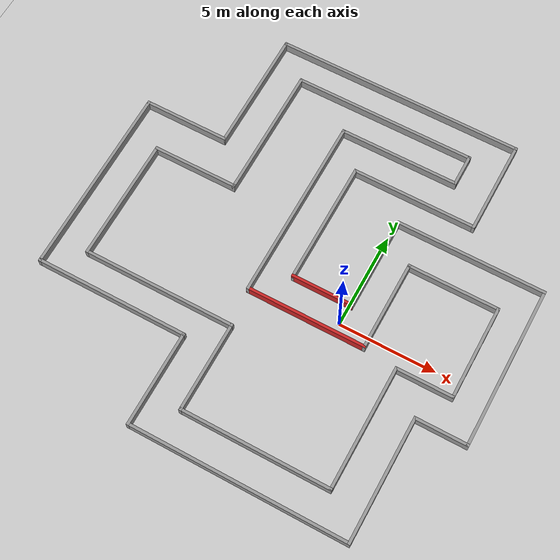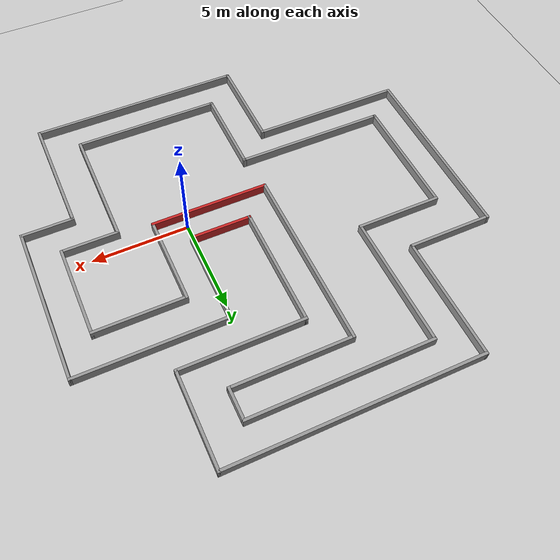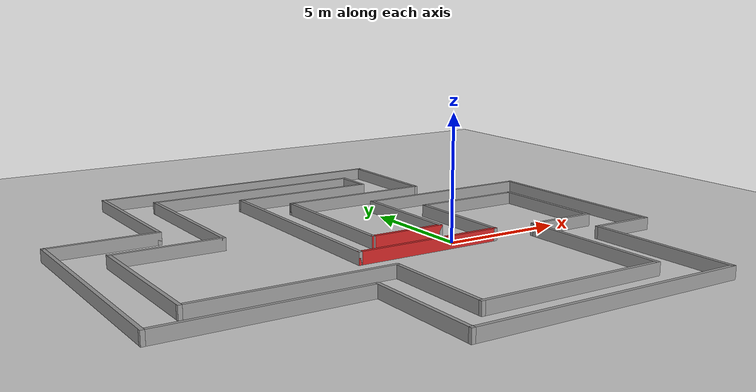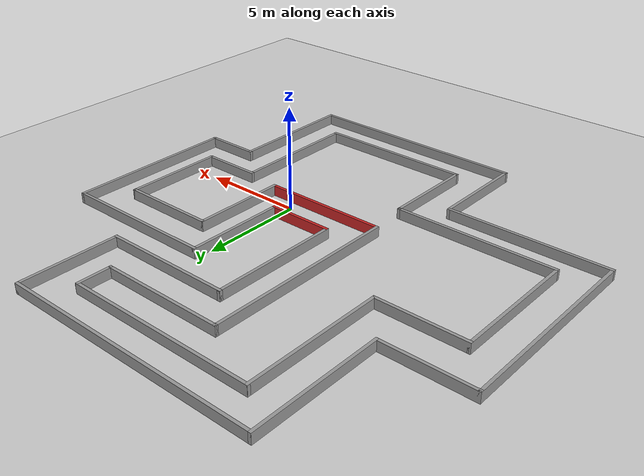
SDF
<sdf version="1.6">
 <world name="default">
  <light name="sun" type="directional">
   <pose>0 0 10 0 -0 0</pose>
   <diffuse>0.8 0.8 0.8 1</diffuse>
   <specular>0.2 0.2 0.2 1</specular>
   <attenuation>
    <range>1000</range>
    <constant>0.9</constant>
    <linear>0.01</linear>
    <quadratic>0.001</quadratic>
   </attenuation>
   <direction>-0.5 0.1 -0.9</direction>
  </light>
  <model name="ground_plane">
   <static>1</static>
   <link name="link">
    <collision name="collision">
     <geometry><plane><normal>0 0 1</normal><size>100 100</size></plane></geometry>
     <surface><friction><ode><mu>100</mu><mu2>50</mu2></ode></friction></surface>
    </collision>
    <visual name="visual">
     <cast_shadows>0</cast_shadows>
     <geometry><plane><normal>0 0 1</normal><size>100 100</size></plane></geometry>
     <material>
      <script><uri>file://media/materials/scripts/gazebo.material</uri><name>Gazebo/Grey</name></script>
     </material>
    </visual>
   </link>
  </model>
  <gravity>0 0 -9.8</gravity>
  <magnetic_field>6e-06 2.3e-05 -4.2e-05</magnetic_field>
  <atmosphere type="adiabatic"/>
  <physics name="default_physics" default="0" type="ode">
   <max_step_size>0.001</max_step_size>
   <real_time_factor>1</real_time_factor>
   <real_time_update_rate>1000</real_time_update_rate>
  </physics>
  <scene><ambient>0.4 0.4 0.4 1</ambient><background>0.7 0.7 0.7 1</background><shadows>1</shadows></scene>
  <audio><device>default</device></audio>
  <spherical_coordinates>
   <surface_model>EARTH_WGS84</surface_model>
   <latitude_deg>0</latitude_deg>
   <longitude_deg>0</longitude_deg>
   <elevation>0</elevation>
   <heading_deg>0</heading_deg>
  </spherical_coordinates>
  <model name="Racetrack">
   <pose>-3.03975 1.63938 0 0 -0 0</pose>
   <link name="Wall_0">
    <collision name="Wall_0_Collision">
     <geometry><box><size>9.75 0.15 0.5</size></box></geometry>
     <pose>0 0 0.25 0 -0 0</pose>
    </collision>
    <visual name="Wall_0_Visual">
     <pose>0 0 0.25 0 -0 0</pose>
     <geometry><box><size>9.75 0.15 0.5</size></box></geometry>
     <material>
      <script><uri>file://media/materials/scripts/gazebo.material</uri><name>Gazebo/Grey</name></script>
      <ambient>1 1 1 1</ambient>
     </material>
     <meta><layer>0</layer></meta>
    </visual>
    <pose>-1.46766 2.57599 0 0 -0 -1.5708</pose>
   </link>
   <link name="Wall_1">
    <collision name="Wall_1_Collision">
     <geometry><box><size>6.25 0.15 0.5</size></box></geometry>
     <pose>0 0 0.25 0 -0 0</pose>
    </collision>
    <visual name="Wall_1_Visual">
     <pose>0 0 0.25 0 -0 0</pose>
     <geometry><box><size>6.25 0.15 0.5</size></box></geometry>
     <material>
      <script><uri>file://media/materials/scripts/gazebo.material</uri><name>Gazebo/Red</name></script>
      <ambient>1 1 1 1</ambient>
     </material>
     <meta><layer>0</layer></meta>
    </visual>
    <pose>1.58234 -2.22401 0 0 -0 0</pose>
   </link>
   <link name="Wall_10">
    <collision name="Wall_10_Collision">
     <geometry><box><size>6.5 0.15 0.5</size></box></geometry>
     <pose>0 0 0.25 0 -0 0</pose>
    </collision>
    <visual name="Wall_10_Visual">
     <pose>0 0 0.25 0 -0 0</pose>
     <geometry><box><size>6.5 0.15 0.5</size></box></geometry>
     <material>
      <script><uri>file://media/materials/scripts/gazebo.material</uri><name>Gazebo/Grey</name></script>
      <ambient>1 1 1 1</ambient>
     </material>
     <meta><layer>0</layer></meta>
    </visual>
    <pose>-9.06766 -1.04901 0 0 -0 1.5708</pose>
   </link>
   <link name="Wall_11">
    <collision name="Wall_11_Collision">
     <geometry><box><size>4.5 0.15 0.5</size></box></geometry>
     <pose>0 0 0.25 0 -0 0</pose>
    </collision>
    <visual name="Wall_11_Visual">
     <pose>0 0 0.25 0 -0 0</pose>
     <geometry><box><size>4.5 0.15 0.5</size></box></geometry>
     <material>
      <script><uri>file://media/materials/scripts/gazebo.material</uri><name>Gazebo/Grey</name></script>
      <ambient>1 1 1 1</ambient>
     </material>
     <meta><layer>0</layer></meta>
    </visual>
    <pose>-6.89266 2.12599 0 0 -0 0</pose>
   </link>
   <link name="Wall_12">
    <collision name="Wall_12_Collision">
     <geometry><box><size>7 0.15 0.5</size></box></geometry>
     <pose>0 0 0.25 0 -0 0</pose>
    </collision>
    <visual name="Wall_12_Visual">
     <pose>0 0 0.25 0 -0 0</pose>
     <geometry><box><size>7 0.15 0.5</size></box></geometry>
     <material>
      <script><uri>file://media/materials/scripts/gazebo.material</uri><name>Gazebo/Grey</name></script>
      <ambient>1 1 1 1</ambient>
     </material>
     <meta><layer>0</layer></meta>
    </visual>
    <pose>-4.71766 5.55099 0 0 -0 1.5708</pose>
   </link>
   <link name="Wall_13">
    <collision name="Wall_13_Collision">
     <geometry><box><size>9.5 0.15 0.5</size></box></geometry>
     <pose>0 0 0.25 0 -0 0</pose>
    </collision>
    <visual name="Wall_13_Visual">
     <pose>0 0 0.25 0 -0 0</pose>
     <geometry><box><size>9.5 0.15 0.5</size></box></geometry>
     <material>
      <script><uri>file://media/materials/scripts/gazebo.material</uri><name>Gazebo/Grey</name></script>
      <ambient>1 1 1 1</ambient>
     </material>
     <meta><layer>0</layer></meta>
    </visual>
    <pose>-0.042701 8.97618 0 0 -0 4e-05</pose>
   </link>
   <link name="Wall_14">
    <collision name="Wall_14_Collision">
     <geometry><box><size>1.75037 0.15 0.5</size></box></geometry>
     <pose>0 0 0.25 0 -0 0</pose>
    </collision>
    <visual name="Wall_14_Visual">
     <pose>0 0 0.25 0 -0 0</pose>
     <geometry><box><size>1.75037 0.15 0.5</size></box></geometry>
     <material>
      <script><uri>file://media/materials/scripts/gazebo.material</uri><name>Gazebo/Grey</name></script>
      <ambient>1 1 1 1</ambient>
     </material>
     <meta><layer>0</layer></meta>
    </visual>
    <pose>4.6323 8.17618 0 0 -0 -1.57075</pose>
   </link>
   <link name="Wall_15">
    <collision name="Wall_15_Collision">
     <geometry><box><size>6.25 0.15 0.5</size></box></geometry>
     <pose>0 0 0.25 0 -0 0</pose>
    </collision>
    <visual name="Wall_15_Visual">
     <pose>0 0 0.25 0 -0 0</pose>
     <geometry><box><size>6.25 0.15 0.5</size></box></geometry>
     <material>
      <script><uri>file://media/materials/scripts/gazebo.material</uri><name>Gazebo/Grey</name></script>
      <ambient>1 1 1 1</ambient>
     </material>
     <meta><layer>0</layer></meta>
    </visual>
    <pose>1.58234 7.37599 0 0 -0 3.14159</pose>
   </link>
   <link name="Wall_16">
    <collision name="Wall_16_Collision">
     <geometry><box><size>0.15 0.15 0.5</size></box></geometry>
     <pose>0 0 0.25 0 -0 0</pose>
    </collision>
    <visual name="Wall_16_Visual">
     <pose>0 0 0.25 0 -0 0</pose>
     <geometry><box><size>0.15 0.15 0.5</size></box></geometry>
     <material>
      <script><uri>file://media/materials/scripts/gazebo.material</uri><name>Gazebo/Grey</name></script>
      <ambient>1 1 1 1</ambient>
     </material>
     <meta><layer>0</layer></meta>
    </visual>
    <pose>-1.46766 7.37599 0 0 -0 0</pose>
   </link>
   <link name="Wall_2">
    <collision name="Wall_2_Collision">
     <geometry><box><size>4.75 0.15 0.5</size></box></geometry>
     <pose>0 0 0.25 0 -0 0</pose>
    </collision>
    <visual name="Wall_2_Visual">
     <pose>0 0 0.25 0 -0 0</pose>
     <geometry><box><size>4.75 0.15 0.5</size></box></geometry>
     <material>
      <script><uri>file://media/materials/scripts/gazebo.material</uri><name>Gazebo/Grey</name></script>
      <ambient>1 1 1 1</ambient>
     </material>
     <meta><layer>0</layer></meta>
    </visual>
    <pose>4.63234 0.075989 0 0 -0 1.5708</pose>
   </link>
   <link name="Wall_3">
    <collision name="Wall_3_Collision">
     <geometry><box><size>4.75 0.15 0.5</size></box></geometry>
     <pose>0 0 0.25 0 -0 0</pose>
    </collision>
    <visual name="Wall_3_Visual">
     <pose>0 0 0.25 0 -0 0</pose>
     <geometry><box><size>4.75 0.15 0.5</size></box></geometry>
     <material>
      <script><uri>file://media/materials/scripts/gazebo.material</uri><name>Gazebo/Grey</name></script>
      <ambient>1 1 1 1</ambient>
     </material>
     <meta><layer>0</layer></meta>
    </visual>
    <pose>6.93234 2.37599 0 0 -0 0</pose>
   </link>
   <link name="Wall_4">
    <collision name="Wall_4_Collision">
     <geometry><box><size>5 0.15 0.5</size></box></geometry>
     <pose>0 0 0.25 0 -0 0</pose>
    </collision>
    <visual name="Wall_4_Visual">
     <pose>0 0 0.25 0 -0 0</pose>
     <geometry><box><size>5 0.15 0.5</size></box></geometry>
     <material>
      <script><uri>file://media/materials/scripts/gazebo.material</uri><name>Gazebo/Grey</name></script>
      <ambient>1 1 1 1</ambient>
     </material>
     <meta><layer>0</layer></meta>
    </visual>
    <pose>9.23234 -0.049011 0 0 -0 -1.5708</pose>
   </link>
   <link name="Wall_5">
    <collision name="Wall_5_Collision">
     <geometry><box><size>3 0.15 0.5</size></box></geometry>
     <pose>0 0 0.25 0 -0 0</pose>
    </collision>
    <visual name="Wall_5_Visual">
     <pose>0 0 0.25 0 -0 0</pose>
     <geometry><box><size>3 0.15 0.5</size></box></geometry>
     <material>
      <script><uri>file://media/materials/scripts/gazebo.material</uri><name>Gazebo/Grey</name></script>
      <ambient>1 1 1 1</ambient>
     </material>
     <meta><layer>0</layer></meta>
    </visual>
    <pose>7.80734 -2.47401 0 0 -0 3.14159</pose>
   </link>
   <link name="Wall_6">
    <collision name="Wall_6_Collision">
     <geometry><box><size>6.5 0.15 0.5</size></box></geometry>
     <pose>0 0 0.25 0 -0 0</pose>
    </collision>
    <visual name="Wall_6_Visual">
     <pose>0 0 0.25 0 -0 0</pose>
     <geometry><box><size>6.5 0.15 0.5</size></box></geometry>
     <material>
      <script><uri>file://media/materials/scripts/gazebo.material</uri><name>Gazebo/Grey</name></script>
      <ambient>1 1 1 1</ambient>
     </material>
     <meta><layer>0</layer></meta>
    </visual>
    <pose>6.38234 -5.64901 0 0 -0 -1.5708</pose>
   </link>
   <link name="Wall_69">
    <collision name="Wall_69_Collision">
     <geometry><box><size>6.5 0.15 0.5</size></box></geometry>
     <pose>0 0 0.25 0 -0 0</pose>
    </collision>
    <visual name="Wall_69_Visual">
     <pose>0 0 0.25 0 -0 0</pose>
     <geometry><box><size>6.5 0.15 0.5</size></box></geometry>
     <material>
      <script><uri>file://media/materials/scripts/gazebo.material</uri><name>Gazebo/Grey</name></script>
      <ambient>1 1 1 1</ambient>
     </material>
     <meta><layer>0</layer></meta>
    </visual>
    <pose>0.075 2.5 0 0 -0 -1.5708</pose>
   </link>
   <link name="Wall_7">
    <collision name="Wall_7_Collision">
     <geometry><box><size>7.75 0.15 0.5</size></box></geometry>
     <pose>0 0 0.25 0 -0 0</pose>
    </collision>
    <visual name="Wall_7_Visual">
     <pose>0 0 0.25 0 -0 0</pose>
     <geometry><box><size>7.75 0.15 0.5</size></box></geometry>
     <material>
      <script><uri>file://media/materials/scripts/gazebo.material</uri><name>Gazebo/Grey</name></script>
      <ambient>1 1 1 1</ambient>
     </material>
     <meta><layer>0</layer></meta>
    </visual>
    <pose>2.58234 -8.82401 0 0 -0 3.14159</pose>
   </link>
   <link name="Wall_70">
    <collision name="Wall_70_Collision">
     <geometry><box><size>3.25 0.15 0.5</size></box></geometry>
     <pose>0 0 0.25 0 -0 0</pose>
    </collision>
    <visual name="Wall_70_Visual">
     <pose>0 0 0.25 0 -0 0</pose>
     <geometry><box><size>3.25 0.15 0.5</size></box></geometry>
     <material>
      <script><uri>file://media/materials/scripts/gazebo.material</uri><name>Gazebo/Red</name></script>
      <ambient>1 1 1 1</ambient>
     </material>
     <meta><layer>0</layer></meta>
    </visual>
    <pose>1.625 -0.675 0 0 -0 0</pose>
   </link>
   <link name="Wall_71">
    <collision name="Wall_71_Collision">
     <geometry><box><size>5 0.15 0.5</size></box></geometry>
     <pose>0 0 0.25 0 -0 0</pose>
    </collision>
    <visual name="Wall_71_Visual">
     <pose>0 0 0.25 0 -0 0</pose>
     <geometry><box><size>5 0.15 0.5</size></box></geometry>
     <material>
      <script><uri>file://media/materials/scripts/gazebo.material</uri><name>Gazebo/Grey</name></script>
      <ambient>1 1 1 1</ambient>
     </material>
     <meta><layer>0</layer></meta>
    </visual>
    <pose>3.175 1.75 0 0 -0 1.5708</pose>
   </link>
   <link name="Wall_72">
    <collision name="Wall_72_Collision">
     <geometry><box><size>7.75 0.15 0.5</size></box></geometry>
     <pose>0 0 0.25 0 -0 0</pose>
    </collision>
    <visual name="Wall_72_Visual">
     <pose>0 0 0.25 0 -0 0</pose>
     <geometry><box><size>7.75 0.15 0.5</size></box></geometry>
     <material>
      <script><uri>file://media/materials/scripts/gazebo.material</uri><name>Gazebo/Grey</name></script>
      <ambient>1 1 1 1</ambient>
     </material>
     <meta><layer>0</layer></meta>
    </visual>
    <pose>6.975 4.175 0 0 -0 0</pose>
   </link>
   <link name="Wall_73">
    <collision name="Wall_73_Collision">
     <geometry><box><size>8.5 0.15 0.5</size></box></geometry>
     <pose>0 0 0.25 0 -0 0</pose>
    </collision>
    <visual name="Wall_73_Visual">
     <pose>0 0 0.25 0 -0 0</pose>
     <geometry><box><size>8.5 0.15 0.5</size></box></geometry>
     <material>
      <script><uri>file://media/materials/scripts/gazebo.material</uri><name>Gazebo/Grey</name></script>
      <ambient>1 1 1 1</ambient>
     </material>
     <meta><layer>0</layer></meta>
    </visual>
    <pose>10.775 0 0 0 -0 -1.5708</pose>
   </link>
   <link name="Wall_74">
    <collision name="Wall_74_Collision">
     <geometry><box><size>2.75 0.15 0.5</size></box></geometry>
     <pose>0 0 0.25 0 -0 0</pose>
    </collision>
    <visual name="Wall_74_Visual">
     <pose>0 0 0.25 0 -0 0</pose>
     <geometry><box><size>2.75 0.15 0.5</size></box></geometry>
     <material>
      <script><uri>file://media/materials/scripts/gazebo.material</uri><name>Gazebo/Grey</name></script>
      <ambient>1 1 1 1</ambient>
     </material>
     <meta><layer>0</layer></meta>
    </visual>
    <pose>9.475 -4.175 0 0 -0 3.14159</pose>
   </link>
   <link name="Wall_75">
    <collision name="Wall_75_Collision">
     <geometry><box><size>6.5 0.15 0.5</size></box></geometry>
     <pose>0 0 0.25 0 -0 0</pose>
    </collision>
    <visual name="Wall_75_Visual">
     <pose>0 0 0.25 0 -0 0</pose>
     <geometry><box><size>6.5 0.15 0.5</size></box></geometry>
     <material>
      <script><uri>file://media/materials/scripts/gazebo.material</uri><name>Gazebo/Grey</name></script>
      <ambient>1 1 1 1</ambient>
     </material>
     <meta><layer>0</layer></meta>
    </visual>
    <pose>8.175 -7.35 0 0 -0 -1.5708</pose>
   </link>
   <link name="Wall_76">
    <collision name="Wall_76_Collision">
     <geometry><box><size>11.25 0.15 0.5</size></box></geometry>
     <pose>0 0 0.25 0 -0 0</pose>
    </collision>
    <visual name="Wall_76_Visual">
     <pose>0 0 0.25 0 -0 0</pose>
     <geometry><box><size>11.25 0.15 0.5</size></box></geometry>
     <material>
      <script><uri>file://media/materials/scripts/gazebo.material</uri><name>Gazebo/Grey</name></script>
      <ambient>1 1 1 1</ambient>
     </material>
     <meta><layer>0</layer></meta>
    </visual>
    <pose>2.625 -10.525 0 0 -0 3.14159</pose>
   </link>
   <link name="Wall_77">
    <collision name="Wall_77_Collision">
     <geometry><box><size>5 0.15 0.5</size></box></geometry>
     <pose>0 0 0.25 0 -0 0</pose>
    </collision>
    <visual name="Wall_77_Visual">
     <pose>0 0 0.25 0 -0 0</pose>
     <geometry><box><size>5 0.15 0.5</size></box></geometry>
     <material>
      <script><uri>file://media/materials/scripts/gazebo.material</uri><name>Gazebo/Grey</name></script>
      <ambient>1 1 1 1</ambient>
     </material>
     <meta><layer>0</layer></meta>
    </visual>
    <pose>-2.925 -8.1 0 0 -0 1.5708</pose>
   </link>
   <link name="Wall_78">
    <collision name="Wall_78_Collision">
     <geometry><box><size>8 0.15 0.5</size></box></geometry>
     <pose>0 0 0.25 0 -0 0</pose>
    </collision>
    <visual name="Wall_78_Visual">
     <pose>0 0 0.25 0 -0 0</pose>
     <geometry><box><size>8 0.15 0.5</size></box></geometry>
     <material>
      <script><uri>file://media/materials/scripts/gazebo.material</uri><name>Gazebo/Grey</name></script>
      <ambient>1 1 1 1</ambient>
     </material>
     <meta><layer>0</layer></meta>
    </visual>
    <pose>-6.85 -5.675 0 0 -0 3.14159</pose>
   </link>
   <link name="Wall_79">
    <collision name="Wall_79_Collision">
     <geometry><box><size>10 0.15 0.5</size></box></geometry>
     <pose>0 0 0.25 0 -0 0</pose>
    </collision>
    <visual name="Wall_79_Visual">
     <pose>0 0 0.25 0 -0 0</pose>
     <geometry><box><size>10 0.15 0.5</size></box></geometry>
     <material>
      <script><uri>file://media/materials/scripts/gazebo.material</uri><name>Gazebo/Grey</name></script>
      <ambient>1 1 1 1</ambient>
     </material>
     <meta><layer>0</layer></meta>
    </visual>
    <pose>-10.775 -0.75 0 0 -0 1.5708</pose>
   </link>
   <link name="Wall_8">
    <collision name="Wall_8_Collision">
     <geometry><box><size>4.75 0.15 0.5</size></box></geometry>
     <pose>0 0 0.25 0 -0 0</pose>
    </collision>
    <visual name="Wall_8_Visual">
     <pose>0 0 0.25 0 -0 0</pose>
     <geometry><box><size>4.75 0.15 0.5</size></box></geometry>
     <material>
      <script><uri>file://media/materials/scripts/gazebo.material</uri><name>Gazebo/Grey</name></script>
      <ambient>1 1 1 1</ambient>
     </material>
     <meta><layer>0</layer></meta>
    </visual>
    <pose>-1.21766 -6.52401 0 0 -0 1.5708</pose>
   </link>
   <link name="Wall_80">
    <collision name="Wall_80_Collision">
     <geometry><box><size>4.5 0.15 0.5</size></box></geometry>
     <pose>0 0 0.25 0 -0 0</pose>
    </collision>
    <visual name="Wall_80_Visual">
     <pose>0 0 0.25 0 -0 0</pose>
     <geometry><box><size>4.5 0.15 0.5</size></box></geometry>
     <material>
      <script><uri>file://media/materials/scripts/gazebo.material</uri><name>Gazebo/Grey</name></script>
      <ambient>1 1 1 1</ambient>
     </material>
     <meta><layer>0</layer></meta>
    </visual>
    <pose>-8.6 4.175 0 0 -0 0</pose>
   </link>
   <link name="Wall_81">
    <collision name="Wall_81_Collision">
     <geometry><box><size>6.5 0.15 0.5</size></box></geometry>
     <pose>0 0 0.25 0 -0 0</pose>
    </collision>
    <visual name="Wall_81_Visual">
     <pose>0 0 0.25 0 -0 0</pose>
     <geometry><box><size>6.5 0.15 0.5</size></box></geometry>
     <material>
      <script><uri>file://media/materials/scripts/gazebo.material</uri><name>Gazebo/Grey</name></script>
      <ambient>1 1 1 1</ambient>
     </material>
     <meta><layer>0</layer></meta>
    </visual>
    <pose>-6.425 7.35 0 0 -0 1.5708</pose>
   </link>
   <link name="Wall_82">
    <collision name="Wall_82_Collision">
     <geometry><box><size>13 0.15 0.5</size></box></geometry>
     <pose>0 0 0.25 0 -0 0</pose>
    </collision>
    <visual name="Wall_82_Visual">
     <pose>0 0 0.25 0 -0 0</pose>
     <geometry><box><size>13 0.15 0.5</size></box></geometry>
     <material>
      <script><uri>file://media/materials/scripts/gazebo.material</uri><name>Gazebo/Grey</name></script>
      <ambient>1 1 1 1</ambient>
     </material>
     <meta><layer>0</layer></meta>
    </visual>
    <pose>0 10.525 0 0 -0 0</pose>
   </link>
   <link name="Wall_83">
    <collision name="Wall_83_Collision">
     <geometry><box><size>5 0.15 0.5</size></box></geometry>
     <pose>0 0 0.25 0 -0 0</pose>
    </collision>
    <visual name="Wall_83_Visual">
     <pose>0 0 0.25 0 -0 0</pose>
     <geometry><box><size>5 0.15 0.5</size></box></geometry>
     <material>
      <script><uri>file://media/materials/scripts/gazebo.material</uri><name>Gazebo/Grey</name></script>
      <ambient>1 1 1 1</ambient>
     </material>
     <meta><layer>0</layer></meta>
    </visual>
    <pose>6.425 8.1 0 0 -0 -1.5708</pose>
   </link>
   <link name="Wall_84">
    <collision name="Wall_84_Collision">
     <geometry><box><size>6.5 0.15 0.5</size></box></geometry>
     <pose>0 0 0.25 0 -0 0</pose>
    </collision>
    <visual name="Wall_84_Visual">
     <pose>0 0 0.25 0 -0 0</pose>
     <geometry><box><size>6.5 0.15 0.5</size></box></geometry>
     <material>
      <script><uri>file://media/materials/scripts/gazebo.material</uri><name>Gazebo/Grey</name></script>
      <ambient>1 1 1 1</ambient>
     </material>
     <meta><layer>0</layer></meta>
    </visual>
    <pose>3.25 5.675 0 0 -0 -3.14159</pose>
   </link>
   <link name="Wall_85">
    <collision name="Wall_85_Collision">
     <geometry><box><size>0.16 0.15 0.5</size></box></geometry>
     <pose>0 0 0.25 0 -0 0</pose>
    </collision>
    <visual name="Wall_85_Visual">
     <pose>0 0 0.25 0 -0 0</pose>
     <geometry><box><size>0.16 0.15 0.5</size></box></geometry>
     <material>
      <script><uri>file://media/materials/scripts/gazebo.material</uri><name>Gazebo/Grey</name></script>
      <ambient>1 1 1 1</ambient>
     </material>
     <meta><layer>0</layer></meta>
    </visual>
    <pose>0.08 5.675 0 0 -0 0</pose>
   </link>
   <link name="Wall_9">
    <collision name="Wall_9_Collision">
     <geometry><box><size>8 0.15 0.5</size></box></geometry>
     <pose>0 0 0.25 0 -0 0</pose>
    </collision>
    <visual name="Wall_9_Visual">
     <pose>0 0 0.25 0 -0 0</pose>
     <geometry><box><size>8 0.15 0.5</size></box></geometry>
     <material>
      <script><uri>file://media/materials/scripts/gazebo.material</uri><name>Gazebo/Grey</name></script>
      <ambient>1 1 1 1</ambient>
     </material>
     <meta><layer>0</layer></meta>
    </visual>
    <pose>-5.14266 -4.22401 0 0 -0 3.14159</pose>
   </link>
   <static>1</static>
  </model>
  <light name="user_point_light_0" type="point">
   <pose>0.009345 0.348866 1 0 -0 0</pose>
   <diffuse>0.5 0.5 0.5 1</diffuse>
   <specular>0.1 0.1 0.1 1</specular>
   <attenuation>
    <range>20</range>
    <constant>0.5</constant>
    <linear>0.01</linear>
    <quadratic>0.001</quadratic>
   </attenuation>
   <cast_shadows>0</cast_shadows>
   <direction>0 0 -1</direction>
  </light>
 </world>
</sdf>
